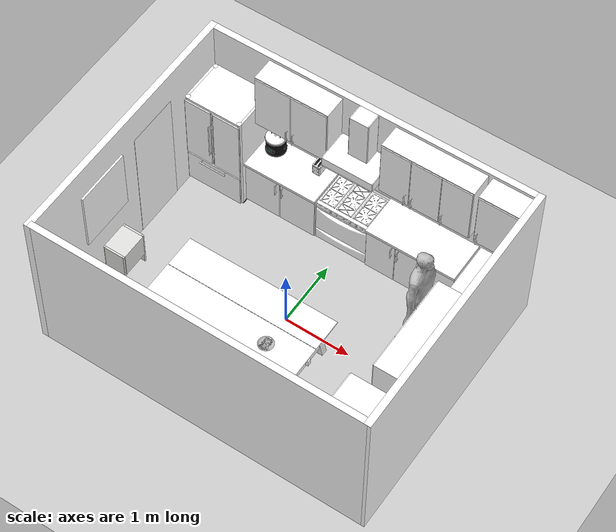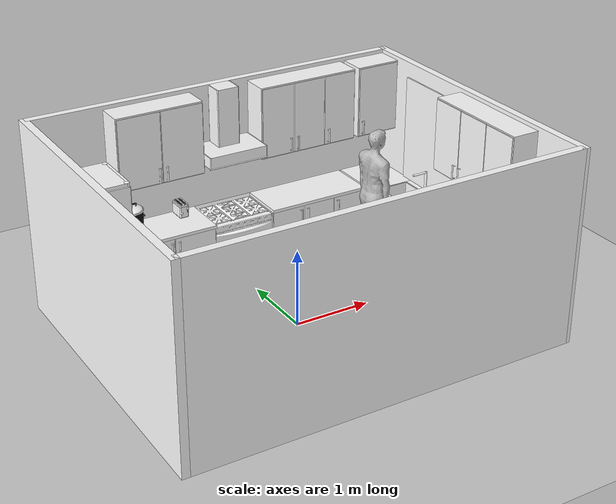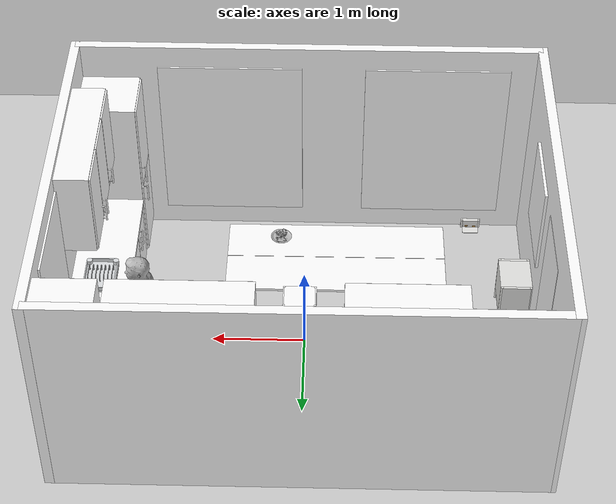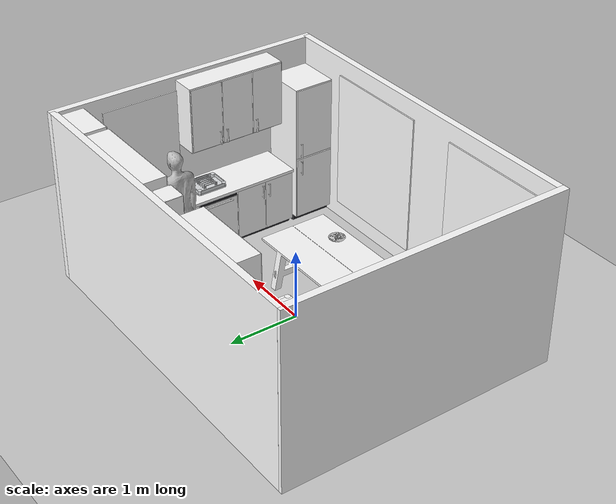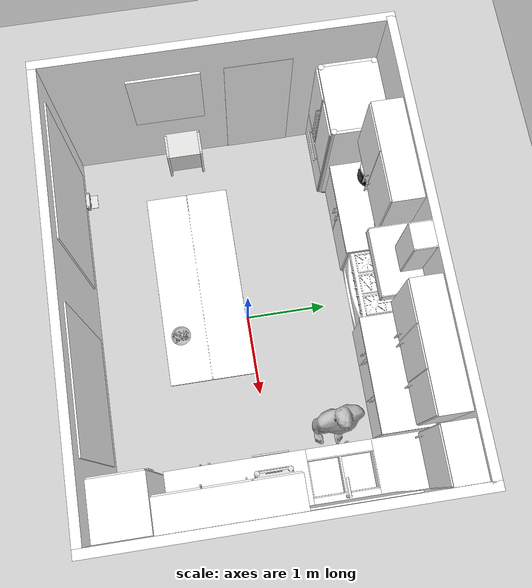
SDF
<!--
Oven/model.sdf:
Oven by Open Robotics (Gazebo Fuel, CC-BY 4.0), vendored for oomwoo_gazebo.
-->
<sdf version="1.10">
 <world name="default">
  <scene>
   <shadows>false</shadows>
   <ambient>0.55 0.55 0.56 1</ambient>
   <background>0.699999988 0.699999988 0.699999988 1</background>
  </scene>
  <physics type="ode">
   <real_time_update_rate>1000</real_time_update_rate>
   <max_step_size>0.001</max_step_size>
   <real_time_factor>1</real_time_factor>
   <ode>
    <solver>
     <type>quick</type>
     <iters>150</iters>
     <precon_iters>0</precon_iters>
     <sor>1.3999999999999999</sor>
     <use_dynamic_moi_rescaling>true</use_dynamic_moi_rescaling>
    </solver>
    <constraints>
     <cfm>1.0000000000000001e-05</cfm>
     <erp>0.20000000000000001</erp>
     <contact_max_correcting_vel>2000</contact_max_correcting_vel>
     <contact_surface_layer>0.01</contact_surface_layer>
    </constraints>
   </ode>
  </physics>
  <plugin name="gz::sim::systems::Physics" filename="gz-sim-physics-system"/>
  <plugin name="gz::sim::systems::UserCommands" filename="gz-sim-user-commands-system"/>
  <plugin name="gz::sim::systems::SceneBroadcaster" filename="gz-sim-scene-broadcaster-system"/>
  <plugin name="gz::sim::systems::Sensors" filename="gz-sim-sensors-system">
   <render_engine>ogre2</render_engine>
  </plugin>
  <plugin name="gz::sim::systems::Imu" filename="gz-sim-imu-system"/>
  <plugin name="gz::sim::systems::Contact" filename="gz-sim-contact-system"/>
  <gravity>0 0 -9.8000000000000007</gravity>
  <magnetic_field>5.5644999999999998e-06 2.2875799999999999e-05 -4.2388400000000002e-05</magnetic_field>
  <atmosphere type="adiabatic"/>
  <include><uri>model://ground plane</uri><name>ground_plane</name></include>
  <light name="sun" type="directional">
   <cast_shadows>false</cast_shadows>
   <pose>0 0 10 0 -0 0</pose>
   <diffuse>0.8 0.8 0.8 1</diffuse>
   <specular>0.2 0.2 0.2 1</specular>
   <intensity>4</intensity>
   <attenuation>
    <range>1000</range>
    <constant>0.9</constant>
    <linear>0.01</linear>
    <quadratic>0.001</quadratic>
   </attenuation>
   <direction>-0.1 0.1 -0.9</direction>
   <spot><inner_angle>0</inner_angle><outer_angle>0</outer_angle><falloff>0</falloff></spot>
  </light>
  <light name="ceiling_light" type="point">
   <cast_shadows>false</cast_shadows>
   <pose>-0.2 0.1 2.4 0 -0 0</pose>
   <diffuse>1 0.97 0.92 1</diffuse>
   <specular>0.3 0.3 0.3 1</specular>
   <intensity>0.6</intensity>
   <attenuation>
    <range>8</range>
    <constant>0.35</constant>
    <linear>0.12</linear>
    <quadratic>0.03</quadratic>
   </attenuation>
  </light>
  <model name="wall_west">
   <static>true</static>
   <include><uri>model://room_wall_25x4m</uri></include>
   <pose>-2.5 0 1.25 0 -0 0</pose>
  </model>
  <model name="wall_east">
   <static>true</static>
   <include><uri>model://room_wall_25x4m</uri></include>
   <pose>2.5 0 1.25 0 -0 0</pose>
  </model>
  <model name="wall_south">
   <static>true</static>
   <include><uri>model://room_wall_25x5m</uri></include>
   <pose>0 -1.95 1.25 0 -0 1.5707</pose>
  </model>
  <model name="wall_north">
   <static>true</static>
   <include><uri>model://room_wall_25x5m</uri></include>
   <pose>0 1.95 1.25 0 -0 1.5707</pose>
  </model>
  <model name="door_08x2m">
   <static>true</static>
   <include><uri>model://door_08x2m</uri></include>
   <pose>-2.495 0.5 1 0 -0 0</pose>
  </model>
  <model name="vacuum_dock">
   <static>true</static>
   <include><uri>model://vacuum_dock</uri></include>
   <pose>-2.45 -0.5 0 0 -0 1.5708</pose>
  </model>
  <model name="charging_dock_basic">
   <static>true</static>
   <include><uri>model://charging_dock_basic</uri></include>
   <pose>-1.9 -1.9 0 0 -0 3.1416</pose>
  </model>
  <model name="makerspet_poster">
   <static>true</static>
   <include><uri>model://makerspet_poster</uri></include>
   <pose>-2.435 -0.6 1.5 0 -0 0</pose>
  </model>
  <model name="window_curtains_south_west">
   <static>true</static>
   <include><uri>model://window_curtains</uri></include>
   <pose>-1.4 -1.89 1.25 0 -0 1.5707</pose>
  </model>
  <model name="window_curtains_south_east">
   <static>true</static>
   <include><uri>model://window_curtains</uri></include>
   <pose>0.85 -1.89 1.25 0 -0 1.5707</pose>
  </model>
  <model name="window_curtains_east">
   <static>true</static>
   <include><uri>model://window_curtains_small</uri></include>
   <pose>2.44 0.75 1.6 0 -0 0</pose>
  </model>
  <model name="fridge_double_door">
   <static>true</static>
   <include><uri>model://fridge_double_door</uri></include>
   <pose>-2 1.9 0 0 -0 0</pose>
  </model>
  <model name="kitchen_base_run_w">
   <static>true</static>
   <include><uri>model://kitchen_base_run_w</uri></include>
   <pose>-0.978 1.9 0 0 -0 0</pose>
  </model>
  <model name="Oven">
   <static>true</static>
   <include><uri>model://Oven</uri></include>
   <pose>0 1.5811 0 0 -0 -1.5707</pose>
  </model>
  <model name="kitchen_base_run_e">
   <static>true</static>
   <include><uri>model://kitchen_base_run_e</uri></include>
   <pose>1.0965 1.9 0 0 -0 0</pose>
  </model>
  <model name="range_hood">
   <static>true</static>
   <include><uri>model://range_hood</uri></include>
   <pose>0 1.9 0 0 -0 0</pose>
  </model>
  <model name="kitchen_wall_cab_w">
   <static>true</static>
   <include><uri>model://kitchen_wall_cab_w</uri></include>
   <pose>-0.978 1.9 0 0 -0 0</pose>
  </model>
  <model name="kitchen_wall_cab_e">
   <static>true</static>
   <include><uri>model://kitchen_wall_cab_e</uri></include>
   <pose>1.0965 1.9 0 0 -0 0</pose>
  </model>
  <model name="kitchen_base_run_east">
   <static>true</static>
   <include><uri>model://kitchen_base_run_east</uri></include>
   <pose>2.45 0.325 0 0 -0 -1.5707</pose>
  </model>
  <model name="dishwasher">
   <static>true</static>
   <include><uri>model://dishwasher</uri></include>
   <pose>2.45 -0.02 0 0 -0 -1.5707</pose>
  </model>
  <model name="kitchen_wall_cab_ec">
   <static>true</static>
   <include><uri>model://kitchen_wall_cab_ec</uri></include>
   <pose>2.15 1.9 0 0 -0 0</pose>
  </model>
  <model name="kitchen_wall_cab_es">
   <static>true</static>
   <include><uri>model://kitchen_wall_cab_es</uri></include>
   <pose>2.45 -0.525 0 0 -0 -1.5707</pose>
  </model>
  <model name="kitchen_pantry">
   <static>true</static>
   <include><uri>model://kitchen_pantry</uri></include>
   <pose>2.45 -1.6 0 0 -0 -1.5707</pose>
  </model>
  <model name="DiningTable">
   <static>true</static>
   <include><uri>model://DiningTable</uri></include>
   <pose>-0.33 -0.55 0 0 -0 1.5707</pose>
  </model>
  <model name="person_standing">
   <static>true</static>
   <include><uri>model://person_standing</uri></include>
   <pose>1.5 0.75 0 0 -0 1.5708</pose>
  </model>
  <model name="salad_plate">
   <static>true</static>
   <include><uri>model://salad_plate</uri></include>
   <pose>0.27 -0.85 0.74 0 -0 0</pose>
  </model>
  <model name="pressure_cooker">
   <static>true</static>
   <include><uri>model://pressure_cooker</uri></include>
   <pose>-1.34 1.73 0.9 0 -0 0</pose>
  </model>
  <model name="toaster_4_slice">
   <static>true</static>
   <include><uri>model://toaster_4_slice</uri></include>
   <pose>-0.65 1.78 0.9 0 -0 0</pose>
  </model>
  <model name="dish_drainer">
   <static>true</static>
   <include><uri>model://dish_drainer</uri></include>
   <pose>2.14 -0.02 0.9 0 -0 0</pose>
  </model>
 </world>
</sdf>

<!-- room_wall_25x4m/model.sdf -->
<sdf version='1.4'>
  <model name='room_wall_25x4m'>
    <link name="link">
      <visual name="visual">
        <geometry>
          <box>
            <size>0.1 4.0 2.5</size>
          </box>
        </geometry>
        <material>
          <pbr>
            <metal>
              <albedo_map>textures/wall_texture_25x4m.jpg</albedo_map>
            <metalness>0.0</metalness><roughness>0.90</roughness>
            </metal>
          </pbr>
          <ambient>1 1 1 1</ambient>
          <diffuse>1 1 1 1</diffuse>
          <specular>1 1 1 1</specular>
          <emissive>0 0 0 1</emissive>
        </material>
        <cast_shadows>1</cast_shadows>
        <transparency>0</transparency>
      </visual>
      <collision name ="collision">
        <geometry>
           <box>
            <size>0.1 4.0 2.5</size>
          </box>
        </geometry>
      </collision>
    </link>
    <static>1</static>
    <allow_auto_disable>1</allow_auto_disable>
  </model>
</sdf>

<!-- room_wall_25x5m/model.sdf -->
<sdf version='1.4'>
  <model name='room_wall_25x5m'>
    <link name="link">
      <visual name="visual">
        <geometry>
          <box>
            <size>0.1 5.0 2.5</size>
          </box>
        </geometry>
        <material>
          <pbr>
            <metal>
              <albedo_map>textures/wall_texture_25x5m.jpg</albedo_map>
            <metalness>0.0</metalness><roughness>0.90</roughness>
            </metal>
          </pbr>
          <ambient>1 1 1 1</ambient>
          <diffuse>1 1 1 1</diffuse>
          <specular>1 1 1 1</specular>
          <emissive>0 0 0 1</emissive>
        </material>
        <cast_shadows>1</cast_shadows>
        <transparency>0</transparency>
      </visual>
      <collision name ="collision">
        <geometry>
           <box>
            <size>0.1 5.0 2.5</size>
          </box>
        </geometry>
      </collision>
    </link>
    <static>1</static>
    <allow_auto_disable>1</allow_auto_disable>
  </model>
</sdf>

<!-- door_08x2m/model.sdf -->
<sdf version='1.4'>
  <model name='door_08x2m'>
    <link name="link">
      <visual name="visual">
        <geometry>
          <box>
            <size>0.1 0.8 2</size>
          </box>
        </geometry>
        <material>
          <pbr>
            <metal>
              <albedo_map>textures/door_08x2m.png</albedo_map>
            <metalness>0.0</metalness><roughness>0.70</roughness>
            </metal>
          </pbr>
          <ambient>1 1 1 1</ambient>
          <diffuse>1 1 1 1</diffuse>
          <specular>1 1 1 1</specular>
          <emissive>0 0 0 1</emissive>
        </material>
        <cast_shadows>1</cast_shadows>
        <transparency>0</transparency>
      </visual>
    </link>
    <static>1</static>
    <allow_auto_disable>1</allow_auto_disable>
  </model>
</sdf>

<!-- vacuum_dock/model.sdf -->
<sdf version="1.6">
  <model name="vacuum_dock">
    <static>true</static>
    <link name="link">
      <visual name="core">
        <pose>0 -0.17 0.375 0 0 0</pose>
        <geometry><box><size>0.4 0.34 0.41</size></box></geometry>
        <material><pbr><metal><metalness>0.00</metalness><roughness>0.35</roughness></metal></pbr><ambient>0.880 0.880 0.870 1</ambient><diffuse>0.880 0.880 0.870 1</diffuse><specular>0.35 0.35 0.35 1</specular><emissive>0 0 0 1</emissive></material>
      </visual>
      <visual name="side0">
        <pose>-0.215 -0.17 0.29 0 0 0</pose>
        <geometry><box><size>0.03 0.31 0.58</size></box></geometry>
        <material><pbr><metal><metalness>0.00</metalness><roughness>0.35</roughness></metal></pbr><ambient>0.880 0.880 0.870 1</ambient><diffuse>0.880 0.880 0.870 1</diffuse><specular>0.35 0.35 0.35 1</specular><emissive>0 0 0 1</emissive></material>
      </visual>
      <visual name="side1">
        <pose>0.215 -0.17 0.29 0 0 0</pose>
        <geometry><box><size>0.03 0.31 0.58</size></box></geometry>
        <material><pbr><metal><metalness>0.00</metalness><roughness>0.35</roughness></metal></pbr><ambient>0.880 0.880 0.870 1</ambient><diffuse>0.880 0.880 0.870 1</diffuse><specular>0.35 0.35 0.35 1</specular><emissive>0 0 0 1</emissive></material>
      </visual>
      <visual name="tube0">
        <pose>-0.215 -0.015 0.29 0 0 0</pose>
        <geometry><cylinder><radius>0.015</radius><length>0.584</length></cylinder></geometry>
        <material><pbr><metal><metalness>0.00</metalness><roughness>0.35</roughness></metal></pbr><ambient>0.880 0.880 0.870 1</ambient><diffuse>0.880 0.880 0.870 1</diffuse><specular>0.35 0.35 0.35 1</specular><emissive>0 0 0 1</emissive></material>
      </visual>
      <visual name="tube1">
        <pose>-0.215 -0.325 0.29 0 0 0</pose>
        <geometry><cylinder><radius>0.015</radius><length>0.584</length></cylinder></geometry>
        <material><pbr><metal><metalness>0.00</metalness><roughness>0.35</roughness></metal></pbr><ambient>0.880 0.880 0.870 1</ambient><diffuse>0.880 0.880 0.870 1</diffuse><specular>0.35 0.35 0.35 1</specular><emissive>0 0 0 1</emissive></material>
      </visual>
      <visual name="tube2">
        <pose>0.215 -0.015 0.29 0 0 0</pose>
        <geometry><cylinder><radius>0.015</radius><length>0.584</length></cylinder></geometry>
        <material><pbr><metal><metalness>0.00</metalness><roughness>0.35</roughness></metal></pbr><ambient>0.880 0.880 0.870 1</ambient><diffuse>0.880 0.880 0.870 1</diffuse><specular>0.35 0.35 0.35 1</specular><emissive>0 0 0 1</emissive></material>
      </visual>
      <visual name="tube3">
        <pose>0.215 -0.325 0.29 0 0 0</pose>
        <geometry><cylinder><radius>0.015</radius><length>0.584</length></cylinder></geometry>
        <material><pbr><metal><metalness>0.00</metalness><roughness>0.35</roughness></metal></pbr><ambient>0.880 0.880 0.870 1</ambient><diffuse>0.880 0.880 0.870 1</diffuse><specular>0.35 0.35 0.35 1</specular><emissive>0 0 0 1</emissive></material>
      </visual>
      <visual name="back_spacer">
        <pose>0 -0.05 0.085 0 0 0</pose>
        <geometry><box><size>0.4 0.1 0.17</size></box></geometry>
        <material><pbr><metal><metalness>0.00</metalness><roughness>0.55</roughness></metal></pbr><ambient>0.130 0.130 0.140 1</ambient><diffuse>0.130 0.130 0.140 1</diffuse><specular>0.35 0.35 0.35 1</specular><emissive>0 0 0 1</emissive></material>
      </visual>
      <collision name="core">
        <pose>0 -0.17 0.375 0 0 0</pose>
        <geometry><box><size>0.4 0.34 0.41</size></box></geometry>
      </collision>
      <collision name="side0">
        <pose>-0.215 -0.17 0.29 0 0 0</pose>
        <geometry><box><size>0.03 0.34 0.58</size></box></geometry>
      </collision>
      <collision name="side1">
        <pose>0.215 -0.17 0.29 0 0 0</pose>
        <geometry><box><size>0.03 0.34 0.58</size></box></geometry>
      </collision>
      <collision name="back_spacer">
        <pose>0 -0.05 0.085 0 0 0</pose>
        <geometry><box><size>0.4 0.1 0.17</size></box></geometry>
      </collision>
    </link>
    <allow_auto_disable>1</allow_auto_disable>
  </model>
</sdf>

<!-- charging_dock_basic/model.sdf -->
<sdf version="1.6">
  <model name="charging_dock_basic">
    <static>true</static>
    <link name="link">
      <visual name="core">
        <pose>0 -0.024 0.049 0 0 0</pose>
        <geometry><box><size>0.172 0.048 0.098</size></box></geometry>
        <material><pbr><metal><metalness>0.00</metalness><roughness>0.35</roughness></metal></pbr><ambient>0.880 0.880 0.870 1</ambient><diffuse>0.880 0.880 0.870 1</diffuse><specular>0.35 0.35 0.35 1</specular><emissive>0 0 0 1</emissive></material>
      </visual>
      <visual name="side0">
        <pose>-0.098 -0.024 0.049 0 0 0</pose>
        <geometry><box><size>0.024 0.024 0.098</size></box></geometry>
        <material><pbr><metal><metalness>0.00</metalness><roughness>0.35</roughness></metal></pbr><ambient>0.880 0.880 0.870 1</ambient><diffuse>0.880 0.880 0.870 1</diffuse><specular>0.35 0.35 0.35 1</specular><emissive>0 0 0 1</emissive></material>
      </visual>
      <visual name="side1">
        <pose>0.098 -0.024 0.049 0 0 0</pose>
        <geometry><box><size>0.024 0.024 0.098</size></box></geometry>
        <material><pbr><metal><metalness>0.00</metalness><roughness>0.35</roughness></metal></pbr><ambient>0.880 0.880 0.870 1</ambient><diffuse>0.880 0.880 0.870 1</diffuse><specular>0.35 0.35 0.35 1</specular><emissive>0 0 0 1</emissive></material>
      </visual>
      <visual name="tube0">
        <pose>-0.098 -0.012 0.049 0 0 0</pose>
        <geometry><cylinder><radius>0.012</radius><length>0.102</length></cylinder></geometry>
        <material><pbr><metal><metalness>0.00</metalness><roughness>0.35</roughness></metal></pbr><ambient>0.880 0.880 0.870 1</ambient><diffuse>0.880 0.880 0.870 1</diffuse><specular>0.35 0.35 0.35 1</specular><emissive>0 0 0 1</emissive></material>
      </visual>
      <visual name="tube1">
        <pose>-0.098 -0.036 0.049 0 0 0</pose>
        <geometry><cylinder><radius>0.012</radius><length>0.102</length></cylinder></geometry>
        <material><pbr><metal><metalness>0.00</metalness><roughness>0.35</roughness></metal></pbr><ambient>0.880 0.880 0.870 1</ambient><diffuse>0.880 0.880 0.870 1</diffuse><specular>0.35 0.35 0.35 1</specular><emissive>0 0 0 1</emissive></material>
      </visual>
      <visual name="tube2">
        <pose>0.098 -0.012 0.049 0 0 0</pose>
        <geometry><cylinder><radius>0.012</radius><length>0.102</length></cylinder></geometry>
        <material><pbr><metal><metalness>0.00</metalness><roughness>0.35</roughness></metal></pbr><ambient>0.880 0.880 0.870 1</ambient><diffuse>0.880 0.880 0.870 1</diffuse><specular>0.35 0.35 0.35 1</specular><emissive>0 0 0 1</emissive></material>
      </visual>
      <visual name="tube3">
        <pose>0.098 -0.036 0.049 0 0 0</pose>
        <geometry><cylinder><radius>0.012</radius><length>0.102</length></cylinder></geometry>
        <material><pbr><metal><metalness>0.00</metalness><roughness>0.35</roughness></metal></pbr><ambient>0.880 0.880 0.870 1</ambient><diffuse>0.880 0.880 0.870 1</diffuse><specular>0.35 0.35 0.35 1</specular><emissive>0 0 0 1</emissive></material>
      </visual>
      <visual name="plate">
        <pose>0 -0.0965 0.003 0 0 0</pose>
        <geometry><box><size>0.18 0.097 0.006</size></box></geometry>
        <material><pbr><metal><metalness>0.00</metalness><roughness>0.35</roughness></metal></pbr><ambient>0.880 0.880 0.870 1</ambient><diffuse>0.880 0.880 0.870 1</diffuse><specular>0.35 0.35 0.35 1</specular><emissive>0 0 0 1</emissive></material>
      </visual>
      <visual name="contact0">
        <pose>-0.045 -0.051 0.022 0 0 0</pose>
        <geometry><box><size>0.032 0.006 0.018</size></box></geometry>
        <material><pbr><metal><metalness>0.70</metalness><roughness>0.20</roughness></metal></pbr><ambient>0.720 0.550 0.300 1</ambient><diffuse>0.720 0.550 0.300 1</diffuse><specular>0.35 0.35 0.35 1</specular><emissive>0 0 0 1</emissive></material>
      </visual>
      <visual name="contact1">
        <pose>0.045 -0.051 0.022 0 0 0</pose>
        <geometry><box><size>0.032 0.006 0.018</size></box></geometry>
        <material><pbr><metal><metalness>0.70</metalness><roughness>0.20</roughness></metal></pbr><ambient>0.720 0.550 0.300 1</ambient><diffuse>0.720 0.550 0.300 1</diffuse><specular>0.35 0.35 0.35 1</specular><emissive>0 0 0 1</emissive></material>
      </visual>
      <collision name="panel">
        <pose>0 -0.024 0.049 0 0 0</pose>
        <geometry><box><size>0.22 0.048 0.098</size></box></geometry>
      </collision>
    </link>
    <allow_auto_disable>1</allow_auto_disable>
  </model>
</sdf>

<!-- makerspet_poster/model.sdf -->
<sdf version='1.4'>
  <model name='makerspet_poster'>
    <link name="link">
      <visual name="visual">
        <geometry>
          <box>
            <size>0.03 0.85714 1</size>
          </box>
        </geometry>
        <material>
          <pbr>
            <metal>
              <albedo_map>textures/makerspet_logo_600x700.png</albedo_map>
            <metalness>0.0</metalness><roughness>0.80</roughness>
            </metal>
          </pbr>
          <ambient>1 1 1 1</ambient>
          <diffuse>1 1 1 1</diffuse>
          <specular>1 1 1 1</specular>
          <emissive>0 0 0 1</emissive>
        </material>
      </visual>
    </link>
    <static>1</static>
    <allow_auto_disable>1</allow_auto_disable>
  </model>
</sdf>

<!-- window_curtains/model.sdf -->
<sdf version='1.4'>
  <model name='window_curtains'>
    <link name="link">
      <visual name="visual">
        <geometry>
          <box>
            <size>0.02 1.5676 2</size>
          </box>
        </geometry>
        <material>
          <pbr>
            <metal>
              <emissive_map>textures/window_curtains.png</emissive_map>
            <metalness>0.0</metalness><roughness>0.95</roughness>
            </metal>
          </pbr>
          <ambient>1 1 1 1</ambient>
          <diffuse>1 1 1 1</diffuse>
          <specular>1 1 1 1</specular>
          <emissive>0.4 0.4 0.4 1</emissive>
        </material>
      </visual>
    </link>
    <static>1</static>
    <allow_auto_disable>1</allow_auto_disable>
  </model>
</sdf>

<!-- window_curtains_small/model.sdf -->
<sdf version="1.4">
  <model name="window_curtains_small">
    <static>true</static>
    <link name="link">
      <visual name="visual">
        <pose>0 0 0 0 0 0</pose>
        <geometry><box><size>0.02 1.10 1.40</size></box></geometry>
        <material><pbr><metal><emissive_map>textures/window_curtains.png</emissive_map></metal></pbr><ambient>1 1 1 1</ambient><diffuse>1 1 1 1</diffuse><specular>1 1 1 1</specular><emissive>0.4 0.4 0.4 1</emissive></material>
      </visual>
    </link>
    <allow_auto_disable>1</allow_auto_disable>
  </model>
</sdf>

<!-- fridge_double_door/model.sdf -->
<sdf version="1.6">
  <model name="fridge_double_door">
    <static>true</static>
    <link name="link">
      <visual name="plinth">
        <pose>0 -0.325 0.03 0 0 0</pose>
        <geometry><box><size>0.88 0.65 0.06</size></box></geometry>
        <material><ambient>0.11 0.11 0.12 1</ambient><diffuse>0.11 0.11 0.12 1</diffuse><specular>0.05 0.05 0.05 1</specular><emissive>0 0 0 1</emissive></material>
      </visual>
      <visual name="body_a">
        <pose>0 -0.35 0.92 0 0 0</pose>
        <geometry><box><size>0.83 0.7 1.72</size></box></geometry>
        <material><pbr><metal><albedo_map>textures/stainless.png</albedo_map><metalness>0.15</metalness><roughness>0.25</roughness></metal></pbr><ambient>1 1 1 1</ambient><diffuse>1 1 1 1</diffuse><specular>1 1 1 1</specular><emissive>0 0 0 1</emissive></material>
      </visual>
      <visual name="body_b0">
        <pose>-0.4325 -0.35 0.92 0 0 0</pose>
        <geometry><box><size>0.035 0.63 1.72</size></box></geometry>
        <material><pbr><metal><albedo_map>textures/stainless.png</albedo_map><metalness>0.15</metalness><roughness>0.25</roughness></metal></pbr><ambient>1 1 1 1</ambient><diffuse>1 1 1 1</diffuse><specular>1 1 1 1</specular><emissive>0 0 0 1</emissive></material>
      </visual>
      <visual name="body_b1">
        <pose>0.4325 -0.35 0.92 0 0 0</pose>
        <geometry><box><size>0.035 0.63 1.72</size></box></geometry>
        <material><pbr><metal><albedo_map>textures/stainless.png</albedo_map><metalness>0.15</metalness><roughness>0.25</roughness></metal></pbr><ambient>1 1 1 1</ambient><diffuse>1 1 1 1</diffuse><specular>1 1 1 1</specular><emissive>0 0 0 1</emissive></material>
      </visual>
      <visual name="body_c0">
        <pose>-0.415 -0.665 0.92 0 0 0</pose>
        <geometry><cylinder><radius>0.035</radius><length>1.7206</length></cylinder></geometry>
        <material><pbr><metal><albedo_map>textures/stainless.png</albedo_map><metalness>0.15</metalness><roughness>0.25</roughness></metal></pbr><ambient>1 1 1 1</ambient><diffuse>1 1 1 1</diffuse><specular>1 1 1 1</specular><emissive>0 0 0 1</emissive></material>
      </visual>
      <visual name="body_c1">
        <pose>-0.415 -0.035 0.92 0 0 0</pose>
        <geometry><cylinder><radius>0.035</radius><length>1.7208</length></cylinder></geometry>
        <material><pbr><metal><albedo_map>textures/stainless.png</albedo_map><metalness>0.15</metalness><roughness>0.25</roughness></metal></pbr><ambient>1 1 1 1</ambient><diffuse>1 1 1 1</diffuse><specular>1 1 1 1</specular><emissive>0 0 0 1</emissive></material>
      </visual>
      <visual name="body_c2">
        <pose>0.415 -0.665 0.92 0 0 0</pose>
        <geometry><cylinder><radius>0.035</radius><length>1.721</length></cylinder></geometry>
        <material><pbr><metal><albedo_map>textures/stainless.png</albedo_map><metalness>0.15</metalness><roughness>0.25</roughness></metal></pbr><ambient>1 1 1 1</ambient><diffuse>1 1 1 1</diffuse><specular>1 1 1 1</specular><emissive>0 0 0 1</emissive></material>
      </visual>
      <visual name="body_c3">
        <pose>0.415 -0.035 0.92 0 0 0</pose>
        <geometry><cylinder><radius>0.035</radius><length>1.7211</length></cylinder></geometry>
        <material><pbr><metal><albedo_map>textures/stainless.png</albedo_map><metalness>0.15</metalness><roughness>0.25</roughness></metal></pbr><ambient>1 1 1 1</ambient><diffuse>1 1 1 1</diffuse><specular>1 1 1 1</specular><emissive>0 0 0 1</emissive></material>
      </visual>
      <visual name="freezer_front_a">
        <pose>0 -0.711 0.345 0 0 0</pose>
        <geometry><box><size>0.862 0.022 0.54</size></box></geometry>
        <material><pbr><metal><albedo_map>textures/stainless.png</albedo_map><metalness>0.15</metalness><roughness>0.25</roughness></metal></pbr><ambient>1 1 1 1</ambient><diffuse>1 1 1 1</diffuse><specular>1 1 1 1</specular><emissive>0 0 0 1</emissive></material>
      </visual>
      <visual name="freezer_front_b0">
        <pose>-0.4355 -0.711 0.345 0 0 0</pose>
        <geometry><box><size>0.009 0.004 0.54</size></box></geometry>
        <material><pbr><metal><albedo_map>textures/stainless.png</albedo_map><metalness>0.15</metalness><roughness>0.25</roughness></metal></pbr><ambient>1 1 1 1</ambient><diffuse>1 1 1 1</diffuse><specular>1 1 1 1</specular><emissive>0 0 0 1</emissive></material>
      </visual>
      <visual name="freezer_front_b1">
        <pose>0.4355 -0.711 0.345 0 0 0</pose>
        <geometry><box><size>0.009 0.004 0.54</size></box></geometry>
        <material><pbr><metal><albedo_map>textures/stainless.png</albedo_map><metalness>0.15</metalness><roughness>0.25</roughness></metal></pbr><ambient>1 1 1 1</ambient><diffuse>1 1 1 1</diffuse><specular>1 1 1 1</specular><emissive>0 0 0 1</emissive></material>
      </visual>
      <visual name="freezer_front_c0">
        <pose>-0.431 -0.713 0.345 0 0 0</pose>
        <geometry><cylinder><radius>0.009</radius><length>0.5406</length></cylinder></geometry>
        <material><pbr><metal><albedo_map>textures/stainless.png</albedo_map><metalness>0.15</metalness><roughness>0.25</roughness></metal></pbr><ambient>1 1 1 1</ambient><diffuse>1 1 1 1</diffuse><specular>1 1 1 1</specular><emissive>0 0 0 1</emissive></material>
      </visual>
      <visual name="freezer_front_c1">
        <pose>-0.431 -0.709 0.345 0 0 0</pose>
        <geometry><cylinder><radius>0.009</radius><length>0.54078</length></cylinder></geometry>
        <material><pbr><metal><albedo_map>textures/stainless.png</albedo_map><metalness>0.15</metalness><roughness>0.25</roughness></metal></pbr><ambient>1 1 1 1</ambient><diffuse>1 1 1 1</diffuse><specular>1 1 1 1</specular><emissive>0 0 0 1</emissive></material>
      </visual>
      <visual name="freezer_front_c2">
        <pose>0.431 -0.713 0.345 0 0 0</pose>
        <geometry><cylinder><radius>0.009</radius><length>0.54096</length></cylinder></geometry>
        <material><pbr><metal><albedo_map>textures/stainless.png</albedo_map><metalness>0.15</metalness><roughness>0.25</roughness></metal></pbr><ambient>1 1 1 1</ambient><diffuse>1 1 1 1</diffuse><specular>1 1 1 1</specular><emissive>0 0 0 1</emissive></material>
      </visual>
      <visual name="freezer_front_c3">
        <pose>0.431 -0.709 0.345 0 0 0</pose>
        <geometry><cylinder><radius>0.009</radius><length>0.54114</length></cylinder></geometry>
        <material><pbr><metal><albedo_map>textures/stainless.png</albedo_map><metalness>0.15</metalness><roughness>0.25</roughness></metal></pbr><ambient>1 1 1 1</ambient><diffuse>1 1 1 1</diffuse><specular>1 1 1 1</specular><emissive>0 0 0 1</emissive></material>
      </visual>
      <visual name="freezer_handle_bar">
        <pose>0 -0.76 0.585 0 1.5708 0</pose>
        <geometry><cylinder><radius>0.009</radius><length>0.42</length></cylinder></geometry>
        <material><pbr><metal><albedo_map>textures/stainless.png</albedo_map><metalness>0.25</metalness><roughness>0.15</roughness></metal></pbr><ambient>1 1 1 1</ambient><diffuse>1 1 1 1</diffuse><specular>1 1 1 1</specular><emissive>0 0 0 1</emissive></material>
      </visual>
      <visual name="freezer_handle_post0">
        <pose>-0.19 -0.741 0.585 1.5708 0 0</pose>
        <geometry><cylinder><radius>0.0063</radius><length>0.038</length></cylinder></geometry>
        <material><pbr><metal><albedo_map>textures/stainless.png</albedo_map><metalness>0.25</metalness><roughness>0.15</roughness></metal></pbr><ambient>1 1 1 1</ambient><diffuse>1 1 1 1</diffuse><specular>1 1 1 1</specular><emissive>0 0 0 1</emissive></material>
      </visual>
      <visual name="freezer_handle_post1">
        <pose>0.19 -0.741 0.585 1.5708 0 0</pose>
        <geometry><cylinder><radius>0.0063</radius><length>0.038</length></cylinder></geometry>
        <material><pbr><metal><albedo_map>textures/stainless.png</albedo_map><metalness>0.25</metalness><roughness>0.15</roughness></metal></pbr><ambient>1 1 1 1</ambient><diffuse>1 1 1 1</diffuse><specular>1 1 1 1</specular><emissive>0 0 0 1</emissive></material>
      </visual>
      <visual name="door0_a">
        <pose>-0.228 -0.711 1.19 0 0 0</pose>
        <geometry><box><size>0.416 0.022 1.1</size></box></geometry>
        <material><pbr><metal><albedo_map>textures/stainless.png</albedo_map><metalness>0.15</metalness><roughness>0.25</roughness></metal></pbr><ambient>1 1 1 1</ambient><diffuse>1 1 1 1</diffuse><specular>1 1 1 1</specular><emissive>0 0 0 1</emissive></material>
      </visual>
      <visual name="door0_b0">
        <pose>-0.4405 -0.711 1.19 0 0 0</pose>
        <geometry><box><size>0.009 0.004 1.1</size></box></geometry>
        <material><pbr><metal><albedo_map>textures/stainless.png</albedo_map><metalness>0.15</metalness><roughness>0.25</roughness></metal></pbr><ambient>1 1 1 1</ambient><diffuse>1 1 1 1</diffuse><specular>1 1 1 1</specular><emissive>0 0 0 1</emissive></material>
      </visual>
      <visual name="door0_b1">
        <pose>-0.0155 -0.711 1.19 0 0 0</pose>
        <geometry><box><size>0.009 0.004 1.1</size></box></geometry>
        <material><pbr><metal><albedo_map>textures/stainless.png</albedo_map><metalness>0.15</metalness><roughness>0.25</roughness></metal></pbr><ambient>1 1 1 1</ambient><diffuse>1 1 1 1</diffuse><specular>1 1 1 1</specular><emissive>0 0 0 1</emissive></material>
      </visual>
      <visual name="door0_c0">
        <pose>-0.436 -0.713 1.19 0 0 0</pose>
        <geometry><cylinder><radius>0.009</radius><length>1.1006</length></cylinder></geometry>
        <material><pbr><metal><albedo_map>textures/stainless.png</albedo_map><metalness>0.15</metalness><roughness>0.25</roughness></metal></pbr><ambient>1 1 1 1</ambient><diffuse>1 1 1 1</diffuse><specular>1 1 1 1</specular><emissive>0 0 0 1</emissive></material>
      </visual>
      <visual name="door0_c1">
        <pose>-0.436 -0.709 1.19 0 0 0</pose>
        <geometry><cylinder><radius>0.009</radius><length>1.1008</length></cylinder></geometry>
        <material><pbr><metal><albedo_map>textures/stainless.png</albedo_map><metalness>0.15</metalness><roughness>0.25</roughness></metal></pbr><ambient>1 1 1 1</ambient><diffuse>1 1 1 1</diffuse><specular>1 1 1 1</specular><emissive>0 0 0 1</emissive></material>
      </visual>
      <visual name="door0_c2">
        <pose>-0.02 -0.713 1.19 0 0 0</pose>
        <geometry><cylinder><radius>0.009</radius><length>1.101</length></cylinder></geometry>
        <material><pbr><metal><albedo_map>textures/stainless.png</albedo_map><metalness>0.15</metalness><roughness>0.25</roughness></metal></pbr><ambient>1 1 1 1</ambient><diffuse>1 1 1 1</diffuse><specular>1 1 1 1</specular><emissive>0 0 0 1</emissive></material>
      </visual>
      <visual name="door0_c3">
        <pose>-0.02 -0.709 1.19 0 0 0</pose>
        <geometry><cylinder><radius>0.009</radius><length>1.1011</length></cylinder></geometry>
        <material><pbr><metal><albedo_map>textures/stainless.png</albedo_map><metalness>0.15</metalness><roughness>0.25</roughness></metal></pbr><ambient>1 1 1 1</ambient><diffuse>1 1 1 1</diffuse><specular>1 1 1 1</specular><emissive>0 0 0 1</emissive></material>
      </visual>
      <visual name="door0_handle_bar">
        <pose>-0.028 -0.76 1.19 0 0 0</pose>
        <geometry><cylinder><radius>0.009</radius><length>0.62</length></cylinder></geometry>
        <material><pbr><metal><albedo_map>textures/stainless.png</albedo_map><metalness>0.25</metalness><roughness>0.15</roughness></metal></pbr><ambient>1 1 1 1</ambient><diffuse>1 1 1 1</diffuse><specular>1 1 1 1</specular><emissive>0 0 0 1</emissive></material>
      </visual>
      <visual name="door0_handle_post0">
        <pose>-0.028 -0.741 0.9 1.5708 0 0</pose>
        <geometry><cylinder><radius>0.0063</radius><length>0.038</length></cylinder></geometry>
        <material><pbr><metal><albedo_map>textures/stainless.png</albedo_map><metalness>0.25</metalness><roughness>0.15</roughness></metal></pbr><ambient>1 1 1 1</ambient><diffuse>1 1 1 1</diffuse><specular>1 1 1 1</specular><emissive>0 0 0 1</emissive></material>
      </visual>
      <visual name="door0_handle_post1">
        <pose>-0.028 -0.741 1.48 1.5708 0 0</pose>
        <geometry><cylinder><radius>0.0063</radius><length>0.038</length></cylinder></geometry>
        <material><pbr><metal><albedo_map>textures/stainless.png</albedo_map><metalness>0.25</metalness><roughness>0.15</roughness></metal></pbr><ambient>1 1 1 1</ambient><diffuse>1 1 1 1</diffuse><specular>1 1 1 1</specular><emissive>0 0 0 1</emissive></material>
      </visual>
      <visual name="door1_a">
        <pose>0.228 -0.711 1.19 0 0 0</pose>
        <geometry><box><size>0.416 0.022 1.1</size></box></geometry>
        <material><pbr><metal><albedo_map>textures/stainless.png</albedo_map><metalness>0.15</metalness><roughness>0.25</roughness></metal></pbr><ambient>1 1 1 1</ambient><diffuse>1 1 1 1</diffuse><specular>1 1 1 1</specular><emissive>0 0 0 1</emissive></material>
      </visual>
      <visual name="door1_b0">
        <pose>0.0155 -0.711 1.19 0 0 0</pose>
        <geometry><box><size>0.009 0.004 1.1</size></box></geometry>
        <material><pbr><metal><albedo_map>textures/stainless.png</albedo_map><metalness>0.15</metalness><roughness>0.25</roughness></metal></pbr><ambient>1 1 1 1</ambient><diffuse>1 1 1 1</diffuse><specular>1 1 1 1</specular><emissive>0 0 0 1</emissive></material>
      </visual>
      <visual name="door1_b1">
        <pose>0.4405 -0.711 1.19 0 0 0</pose>
        <geometry><box><size>0.009 0.004 1.1</size></box></geometry>
        <material><pbr><metal><albedo_map>textures/stainless.png</albedo_map><metalness>0.15</metalness><roughness>0.25</roughness></metal></pbr><ambient>1 1 1 1</ambient><diffuse>1 1 1 1</diffuse><specular>1 1 1 1</specular><emissive>0 0 0 1</emissive></material>
      </visual>
      <visual name="door1_c0">
        <pose>0.02 -0.713 1.19 0 0 0</pose>
        <geometry><cylinder><radius>0.009</radius><length>1.1006</length></cylinder></geometry>
        <material><pbr><metal><albedo_map>textures/stainless.png</albedo_map><metalness>0.15</metalness><roughness>0.25</roughness></metal></pbr><ambient>1 1 1 1</ambient><diffuse>1 1 1 1</diffuse><specular>1 1 1 1</specular><emissive>0 0 0 1</emissive></material>
      </visual>
      <visual name="door1_c1">
        <pose>0.02 -0.709 1.19 0 0 0</pose>
        <geometry><cylinder><radius>0.009</radius><length>1.1008</length></cylinder></geometry>
        <material><pbr><metal><albedo_map>textures/stainless.png</albedo_map><metalness>0.15</metalness><roughness>0.25</roughness></metal></pbr><ambient>1 1 1 1</ambient><diffuse>1 1 1 1</diffuse><specular>1 1 1 1</specular><emissive>0 0 0 1</emissive></material>
      </visual>
      <visual name="door1_c2">
        <pose>0.436 -0.713 1.19 0 0 0</pose>
        <geometry><cylinder><radius>0.009</radius><length>1.101</length></cylinder></geometry>
        <material><pbr><metal><albedo_map>textures/stainless.png</albedo_map><metalness>0.15</metalness><roughness>0.25</roughness></metal></pbr><ambient>1 1 1 1</ambient><diffuse>1 1 1 1</diffuse><specular>1 1 1 1</specular><emissive>0 0 0 1</emissive></material>
      </visual>
      <visual name="door1_c3">
        <pose>0.436 -0.709 1.19 0 0 0</pose>
        <geometry><cylinder><radius>0.009</radius><length>1.1011</length></cylinder></geometry>
        <material><pbr><metal><albedo_map>textures/stainless.png</albedo_map><metalness>0.15</metalness><roughness>0.25</roughness></metal></pbr><ambient>1 1 1 1</ambient><diffuse>1 1 1 1</diffuse><specular>1 1 1 1</specular><emissive>0 0 0 1</emissive></material>
      </visual>
      <visual name="door1_handle_bar">
        <pose>0.028 -0.76 1.19 0 0 0</pose>
        <geometry><cylinder><radius>0.009</radius><length>0.62</length></cylinder></geometry>
        <material><pbr><metal><albedo_map>textures/stainless.png</albedo_map><metalness>0.25</metalness><roughness>0.15</roughness></metal></pbr><ambient>1 1 1 1</ambient><diffuse>1 1 1 1</diffuse><specular>1 1 1 1</specular><emissive>0 0 0 1</emissive></material>
      </visual>
      <visual name="door1_handle_post0">
        <pose>0.028 -0.741 0.9 1.5708 0 0</pose>
        <geometry><cylinder><radius>0.0063</radius><length>0.038</length></cylinder></geometry>
        <material><pbr><metal><albedo_map>textures/stainless.png</albedo_map><metalness>0.25</metalness><roughness>0.15</roughness></metal></pbr><ambient>1 1 1 1</ambient><diffuse>1 1 1 1</diffuse><specular>1 1 1 1</specular><emissive>0 0 0 1</emissive></material>
      </visual>
      <visual name="door1_handle_post1">
        <pose>0.028 -0.741 1.48 1.5708 0 0</pose>
        <geometry><cylinder><radius>0.0063</radius><length>0.038</length></cylinder></geometry>
        <material><pbr><metal><albedo_map>textures/stainless.png</albedo_map><metalness>0.25</metalness><roughness>0.15</roughness></metal></pbr><ambient>1 1 1 1</ambient><diffuse>1 1 1 1</diffuse><specular>1 1 1 1</specular><emissive>0 0 0 1</emissive></material>
      </visual>
      <collision name="body">
        <pose>0 -0.361 0.89 0 0 0</pose>
        <geometry><box><size>0.9 0.722 1.78</size></box></geometry>
      </collision>
    </link>
    <allow_auto_disable>1</allow_auto_disable>
  </model>
</sdf>

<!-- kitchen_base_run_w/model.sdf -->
<sdf version="1.6">
  <model name="kitchen_base_run_w">
    <static>true</static>
    <link name="link">
      <visual name="toe_kick">
        <pose>0 -0.262 0.0445 0 0 0</pose>
        <geometry><box><size>1.144 0.524 0.089</size></box></geometry>
        <material><ambient>0.11 0.11 0.12 1</ambient><diffuse>0.11 0.11 0.12 1</diffuse><specular>0.05 0.05 0.05 1</specular><emissive>0 0 0 1</emissive></material>
      </visual>
      <visual name="carcass0">
        <pose>0 -0.3 0.4745 0 0 0</pose>
        <geometry><box><size>1.144 0.6 0.771</size></box></geometry>
        <material><pbr><metal><albedo_map>textures/wood.png</albedo_map><metalness>0.0</metalness><roughness>0.75</roughness></metal></pbr><ambient>1 1 1 1</ambient><diffuse>1 1 1 1</diffuse><specular>0.25 0.25 0.25 1</specular><emissive>0 0 0 1</emissive></material>
      </visual>
      <visual name="counter">
        <pose>0 -0.3175 0.88 0 0 0</pose>
        <geometry><box><size>1.144 0.635 0.04</size></box></geometry>
        <material><pbr><metal><albedo_map>textures/marble.png</albedo_map><metalness>0.1</metalness><roughness>0.25</roughness></metal></pbr><ambient>1 1 1 1</ambient><diffuse>1 1 1 1</diffuse><specular>0.25 0.25 0.25 1</specular><emissive>0 0 0 1</emissive></material>
      </visual>
      <visual name="door0">
        <pose>-0.283 -0.608 0.475 0 0 0</pose>
        <geometry><box><size>0.554 0.016 0.75</size></box></geometry>
        <material><pbr><metal><albedo_map>textures/wood.png</albedo_map><metalness>0.0</metalness><roughness>0.55</roughness></metal></pbr><ambient>1 1 1 1</ambient><diffuse>1 1 1 1</diffuse><specular>0.25 0.25 0.25 1</specular><emissive>0 0 0 1</emissive></material>
      </visual>
      <visual name="door0_handle_bar">
        <pose>-0.051 -0.654 0.72 0 0 0</pose>
        <geometry><cylinder><radius>0.009</radius><length>0.2</length></cylinder></geometry>
        <material><pbr><metal><albedo_map>textures/stainless.png</albedo_map><metalness>0.25</metalness><roughness>0.15</roughness></metal></pbr><ambient>1 1 1 1</ambient><diffuse>1 1 1 1</diffuse><specular>1 1 1 1</specular><emissive>0 0 0 1</emissive></material>
      </visual>
      <visual name="door0_handle_post0">
        <pose>-0.051 -0.635 0.64 1.5708 0 0</pose>
        <geometry><cylinder><radius>0.0063</radius><length>0.038</length></cylinder></geometry>
        <material><pbr><metal><albedo_map>textures/stainless.png</albedo_map><metalness>0.25</metalness><roughness>0.15</roughness></metal></pbr><ambient>1 1 1 1</ambient><diffuse>1 1 1 1</diffuse><specular>1 1 1 1</specular><emissive>0 0 0 1</emissive></material>
      </visual>
      <visual name="door0_handle_post1">
        <pose>-0.051 -0.635 0.8 1.5708 0 0</pose>
        <geometry><cylinder><radius>0.0063</radius><length>0.038</length></cylinder></geometry>
        <material><pbr><metal><albedo_map>textures/stainless.png</albedo_map><metalness>0.25</metalness><roughness>0.15</roughness></metal></pbr><ambient>1 1 1 1</ambient><diffuse>1 1 1 1</diffuse><specular>1 1 1 1</specular><emissive>0 0 0 1</emissive></material>
      </visual>
      <visual name="door1">
        <pose>0.283 -0.608 0.475 0 0 0</pose>
        <geometry><box><size>0.554 0.016 0.75</size></box></geometry>
        <material><pbr><metal><albedo_map>textures/wood.png</albedo_map><metalness>0.0</metalness><roughness>0.55</roughness></metal></pbr><ambient>1 1 1 1</ambient><diffuse>1 1 1 1</diffuse><specular>0.25 0.25 0.25 1</specular><emissive>0 0 0 1</emissive></material>
      </visual>
      <visual name="door1_handle_bar">
        <pose>0.051 -0.654 0.72 0 0 0</pose>
        <geometry><cylinder><radius>0.009</radius><length>0.2</length></cylinder></geometry>
        <material><pbr><metal><albedo_map>textures/stainless.png</albedo_map><metalness>0.25</metalness><roughness>0.15</roughness></metal></pbr><ambient>1 1 1 1</ambient><diffuse>1 1 1 1</diffuse><specular>1 1 1 1</specular><emissive>0 0 0 1</emissive></material>
      </visual>
      <visual name="door1_handle_post0">
        <pose>0.051 -0.635 0.64 1.5708 0 0</pose>
        <geometry><cylinder><radius>0.0063</radius><length>0.038</length></cylinder></geometry>
        <material><pbr><metal><albedo_map>textures/stainless.png</albedo_map><metalness>0.25</metalness><roughness>0.15</roughness></metal></pbr><ambient>1 1 1 1</ambient><diffuse>1 1 1 1</diffuse><specular>1 1 1 1</specular><emissive>0 0 0 1</emissive></material>
      </visual>
      <visual name="door1_handle_post1">
        <pose>0.051 -0.635 0.8 1.5708 0 0</pose>
        <geometry><cylinder><radius>0.0063</radius><length>0.038</length></cylinder></geometry>
        <material><pbr><metal><albedo_map>textures/stainless.png</albedo_map><metalness>0.25</metalness><roughness>0.15</roughness></metal></pbr><ambient>1 1 1 1</ambient><diffuse>1 1 1 1</diffuse><specular>1 1 1 1</specular><emissive>0 0 0 1</emissive></material>
      </visual>
      <collision name="toe_kick">
        <pose>0 -0.262 0.0445 0 0 0</pose>
        <geometry><box><size>1.144 0.524 0.089</size></box></geometry>
      </collision>
      <collision name="body">
        <pose>0 -0.308 0.4945 0 0 0</pose>
        <geometry><box><size>1.144 0.616 0.811</size></box></geometry>
      </collision>
    </link>
    <allow_auto_disable>1</allow_auto_disable>
  </model>
</sdf>

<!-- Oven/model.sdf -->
<sdf version="1.6">
  <model name="Oven">
    <static>true</static>
    <link name="base_link">
      <visual name="visual_oven">
        <geometry>
          <mesh>
            <scale>0.8452 0.8452 0.8452</scale>
            <uri>meshes/oven.dae</uri>
            <submesh>
              <name>Oven</name>
              <center>false</center>
            </submesh>
          </mesh>
        </geometry>
        <material>
          <diffuse>1.0 1.0 1.0</diffuse>
          <specular>1.0 1.0 1.0</specular>
          <pbr>
            <metal>
              <albedo_map>materials/textures/Oven_Albedo.png</albedo_map>
              <normal_map>materials/textures/Oven_Normal.png</normal_map>
              <roughness_map>materials/textures/Oven_Roughness.png</roughness_map>
              <metalness_map>materials/textures/Oven_Metalness.png</metalness_map>
            </metal>
          </pbr>
        </material>
      </visual>
      <visual name="visual_glass">
        <geometry>
          <mesh>
            <scale>0.8452 0.8452 0.8452</scale>
            <uri>meshes/oven.dae</uri>
            <submesh>
              <name>Glass</name>
              <center>false</center>
            </submesh>
          </mesh>
        </geometry>
        <material>
          <diffuse>1.0 1.0 1.0</diffuse>
          <specular>1.0 1.0 1.0</specular>
          <pbr>
            <metal>
              <albedo_map>materials/textures/Glass.png</albedo_map>
              <roughness>0.1</roughness>
            </metal>
          </pbr>
        </material>
      </visual>
      <collision name="Box001">
        <pose>-0.000257 -1.41058e-06 0.437055 0.0 0.0 0.0</pose>
        <geometry>
          <box>
            <size>0.58448 0.81688 0.87411</size>
          </box>
        </geometry>
      </collision>
    </link>
  </model>
</sdf>

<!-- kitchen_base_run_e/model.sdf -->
<sdf version="1.6">
  <model name="kitchen_base_run_e">
    <static>true</static>
    <link name="link">
      <visual name="toe_kick">
        <pose>0 -0.262 0.0445 0 0 0</pose>
        <geometry><box><size>1.381 0.524 0.089</size></box></geometry>
        <material><ambient>0.11 0.11 0.12 1</ambient><diffuse>0.11 0.11 0.12 1</diffuse><specular>0.05 0.05 0.05 1</specular><emissive>0 0 0 1</emissive></material>
      </visual>
      <visual name="carcass0">
        <pose>0 -0.3 0.4745 0 0 0</pose>
        <geometry><box><size>1.381 0.6 0.771</size></box></geometry>
        <material><pbr><metal><albedo_map>textures/wood.png</albedo_map><metalness>0.0</metalness><roughness>0.75</roughness></metal></pbr><ambient>1 1 1 1</ambient><diffuse>1 1 1 1</diffuse><specular>0.25 0.25 0.25 1</specular><emissive>0 0 0 1</emissive></material>
      </visual>
      <visual name="counter">
        <pose>0 -0.3175 0.88 0 0 0</pose>
        <geometry><box><size>1.381 0.635 0.04</size></box></geometry>
        <material><pbr><metal><albedo_map>textures/marble.png</albedo_map><metalness>0.1</metalness><roughness>0.25</roughness></metal></pbr><ambient>1 1 1 1</ambient><diffuse>1 1 1 1</diffuse><specular>0.25 0.25 0.25 1</specular><emissive>0 0 0 1</emissive></material>
      </visual>
      <visual name="door0">
        <pose>-0.45633 -0.608 0.475 0 0 0</pose>
        <geometry><box><size>0.44433 0.016 0.75</size></box></geometry>
        <material><pbr><metal><albedo_map>textures/wood.png</albedo_map><metalness>0.0</metalness><roughness>0.55</roughness></metal></pbr><ambient>1 1 1 1</ambient><diffuse>1 1 1 1</diffuse><specular>0.25 0.25 0.25 1</specular><emissive>0 0 0 1</emissive></material>
      </visual>
      <visual name="door0_handle_bar">
        <pose>-0.27917 -0.654 0.72 0 0 0</pose>
        <geometry><cylinder><radius>0.009</radius><length>0.2</length></cylinder></geometry>
        <material><pbr><metal><albedo_map>textures/stainless.png</albedo_map><metalness>0.25</metalness><roughness>0.15</roughness></metal></pbr><ambient>1 1 1 1</ambient><diffuse>1 1 1 1</diffuse><specular>1 1 1 1</specular><emissive>0 0 0 1</emissive></material>
      </visual>
      <visual name="door0_handle_post0">
        <pose>-0.27917 -0.635 0.64 1.5708 0 0</pose>
        <geometry><cylinder><radius>0.0063</radius><length>0.038</length></cylinder></geometry>
        <material><pbr><metal><albedo_map>textures/stainless.png</albedo_map><metalness>0.25</metalness><roughness>0.15</roughness></metal></pbr><ambient>1 1 1 1</ambient><diffuse>1 1 1 1</diffuse><specular>1 1 1 1</specular><emissive>0 0 0 1</emissive></material>
      </visual>
      <visual name="door0_handle_post1">
        <pose>-0.27917 -0.635 0.8 1.5708 0 0</pose>
        <geometry><cylinder><radius>0.0063</radius><length>0.038</length></cylinder></geometry>
        <material><pbr><metal><albedo_map>textures/stainless.png</albedo_map><metalness>0.25</metalness><roughness>0.15</roughness></metal></pbr><ambient>1 1 1 1</ambient><diffuse>1 1 1 1</diffuse><specular>1 1 1 1</specular><emissive>0 0 0 1</emissive></material>
      </visual>
      <visual name="door1">
        <pose>-5.5511e-17 -0.608 0.475 0 0 0</pose>
        <geometry><box><size>0.44433 0.016 0.75</size></box></geometry>
        <material><pbr><metal><albedo_map>textures/wood.png</albedo_map><metalness>0.0</metalness><roughness>0.55</roughness></metal></pbr><ambient>1 1 1 1</ambient><diffuse>1 1 1 1</diffuse><specular>0.25 0.25 0.25 1</specular><emissive>0 0 0 1</emissive></material>
      </visual>
      <visual name="door1_handle_bar">
        <pose>-0.17717 -0.654 0.72 0 0 0</pose>
        <geometry><cylinder><radius>0.009</radius><length>0.2</length></cylinder></geometry>
        <material><pbr><metal><albedo_map>textures/stainless.png</albedo_map><metalness>0.25</metalness><roughness>0.15</roughness></metal></pbr><ambient>1 1 1 1</ambient><diffuse>1 1 1 1</diffuse><specular>1 1 1 1</specular><emissive>0 0 0 1</emissive></material>
      </visual>
      <visual name="door1_handle_post0">
        <pose>-0.17717 -0.635 0.64 1.5708 0 0</pose>
        <geometry><cylinder><radius>0.0063</radius><length>0.038</length></cylinder></geometry>
        <material><pbr><metal><albedo_map>textures/stainless.png</albedo_map><metalness>0.25</metalness><roughness>0.15</roughness></metal></pbr><ambient>1 1 1 1</ambient><diffuse>1 1 1 1</diffuse><specular>1 1 1 1</specular><emissive>0 0 0 1</emissive></material>
      </visual>
      <visual name="door1_handle_post1">
        <pose>-0.17717 -0.635 0.8 1.5708 0 0</pose>
        <geometry><cylinder><radius>0.0063</radius><length>0.038</length></cylinder></geometry>
        <material><pbr><metal><albedo_map>textures/stainless.png</albedo_map><metalness>0.25</metalness><roughness>0.15</roughness></metal></pbr><ambient>1 1 1 1</ambient><diffuse>1 1 1 1</diffuse><specular>1 1 1 1</specular><emissive>0 0 0 1</emissive></material>
      </visual>
      <visual name="door2">
        <pose>0.45633 -0.608 0.475 0 0 0</pose>
        <geometry><box><size>0.44433 0.016 0.75</size></box></geometry>
        <material><pbr><metal><albedo_map>textures/wood.png</albedo_map><metalness>0.0</metalness><roughness>0.55</roughness></metal></pbr><ambient>1 1 1 1</ambient><diffuse>1 1 1 1</diffuse><specular>0.25 0.25 0.25 1</specular><emissive>0 0 0 1</emissive></material>
      </visual>
      <visual name="door2_handle_bar">
        <pose>0.27917 -0.654 0.72 0 0 0</pose>
        <geometry><cylinder><radius>0.009</radius><length>0.2</length></cylinder></geometry>
        <material><pbr><metal><albedo_map>textures/stainless.png</albedo_map><metalness>0.25</metalness><roughness>0.15</roughness></metal></pbr><ambient>1 1 1 1</ambient><diffuse>1 1 1 1</diffuse><specular>1 1 1 1</specular><emissive>0 0 0 1</emissive></material>
      </visual>
      <visual name="door2_handle_post0">
        <pose>0.27917 -0.635 0.64 1.5708 0 0</pose>
        <geometry><cylinder><radius>0.0063</radius><length>0.038</length></cylinder></geometry>
        <material><pbr><metal><albedo_map>textures/stainless.png</albedo_map><metalness>0.25</metalness><roughness>0.15</roughness></metal></pbr><ambient>1 1 1 1</ambient><diffuse>1 1 1 1</diffuse><specular>1 1 1 1</specular><emissive>0 0 0 1</emissive></material>
      </visual>
      <visual name="door2_handle_post1">
        <pose>0.27917 -0.635 0.8 1.5708 0 0</pose>
        <geometry><cylinder><radius>0.0063</radius><length>0.038</length></cylinder></geometry>
        <material><pbr><metal><albedo_map>textures/stainless.png</albedo_map><metalness>0.25</metalness><roughness>0.15</roughness></metal></pbr><ambient>1 1 1 1</ambient><diffuse>1 1 1 1</diffuse><specular>1 1 1 1</specular><emissive>0 0 0 1</emissive></material>
      </visual>
      <collision name="toe_kick">
        <pose>0 -0.262 0.0445 0 0 0</pose>
        <geometry><box><size>1.381 0.524 0.089</size></box></geometry>
      </collision>
      <collision name="body">
        <pose>0 -0.308 0.4945 0 0 0</pose>
        <geometry><box><size>1.381 0.616 0.811</size></box></geometry>
      </collision>
    </link>
    <allow_auto_disable>1</allow_auto_disable>
  </model>
</sdf>

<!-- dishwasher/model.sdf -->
<sdf version="1.6">
  <model name="dishwasher">
    <static>true</static>
    <link name="link">
      <visual name="body">
        <pose>0 -0.29 0.4745 0 0 0</pose>
        <geometry><box><size>0.596 0.58 0.771</size></box></geometry>
        <material><pbr><metal><albedo_map>textures/stainless.png</albedo_map><metalness>0.15</metalness><roughness>0.25</roughness></metal></pbr><ambient>1 1 1 1</ambient><diffuse>1 1 1 1</diffuse><specular>1 1 1 1</specular><emissive>0 0 0 1</emissive></material>
      </visual>
      <visual name="door">
        <pose>0 -0.608 0.45 0 0 0</pose>
        <geometry><box><size>0.596 0.016 0.7</size></box></geometry>
        <material><pbr><metal><albedo_map>textures/stainless.png</albedo_map><metalness>0.15</metalness><roughness>0.25</roughness></metal></pbr><ambient>1 1 1 1</ambient><diffuse>1 1 1 1</diffuse><specular>1 1 1 1</specular><emissive>0 0 0 1</emissive></material>
      </visual>
      <visual name="control_panel">
        <pose>0 -0.608 0.83 0 0 0</pose>
        <geometry><box><size>0.596 0.016 0.05</size></box></geometry>
        <material><ambient>0.11 0.11 0.12 1</ambient><diffuse>0.11 0.11 0.12 1</diffuse><specular>0.05 0.05 0.05 1</specular><emissive>0 0 0 1</emissive></material>
      </visual>
      <visual name="handle_bar">
        <pose>0 -0.654 0.78 0 1.5708 0</pose>
        <geometry><cylinder><radius>0.009</radius><length>0.42</length></cylinder></geometry>
        <material><pbr><metal><albedo_map>textures/stainless.png</albedo_map><metalness>0.25</metalness><roughness>0.15</roughness></metal></pbr><ambient>1 1 1 1</ambient><diffuse>1 1 1 1</diffuse><specular>1 1 1 1</specular><emissive>0 0 0 1</emissive></material>
      </visual>
      <visual name="handle_post0">
        <pose>-0.19 -0.635 0.78 1.5708 0 0</pose>
        <geometry><cylinder><radius>0.0063</radius><length>0.038</length></cylinder></geometry>
        <material><pbr><metal><albedo_map>textures/stainless.png</albedo_map><metalness>0.25</metalness><roughness>0.15</roughness></metal></pbr><ambient>1 1 1 1</ambient><diffuse>1 1 1 1</diffuse><specular>1 1 1 1</specular><emissive>0 0 0 1</emissive></material>
      </visual>
      <visual name="handle_post1">
        <pose>0.19 -0.635 0.78 1.5708 0 0</pose>
        <geometry><cylinder><radius>0.0063</radius><length>0.038</length></cylinder></geometry>
        <material><pbr><metal><albedo_map>textures/stainless.png</albedo_map><metalness>0.25</metalness><roughness>0.15</roughness></metal></pbr><ambient>1 1 1 1</ambient><diffuse>1 1 1 1</diffuse><specular>1 1 1 1</specular><emissive>0 0 0 1</emissive></material>
      </visual>
      <collision name="body">
        <pose>0 -0.298 0.4745 0 0 0</pose>
        <geometry><box><size>0.596 0.596 0.771</size></box></geometry>
      </collision>
    </link>
    <allow_auto_disable>1</allow_auto_disable>
  </model>
</sdf>
